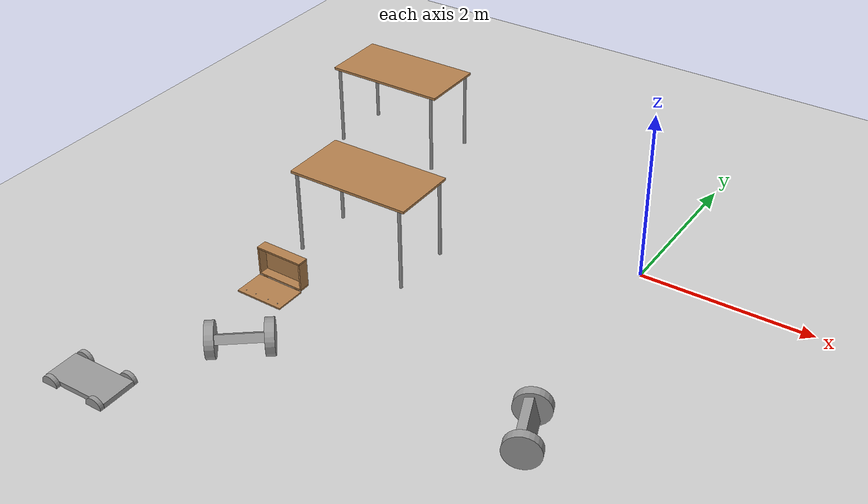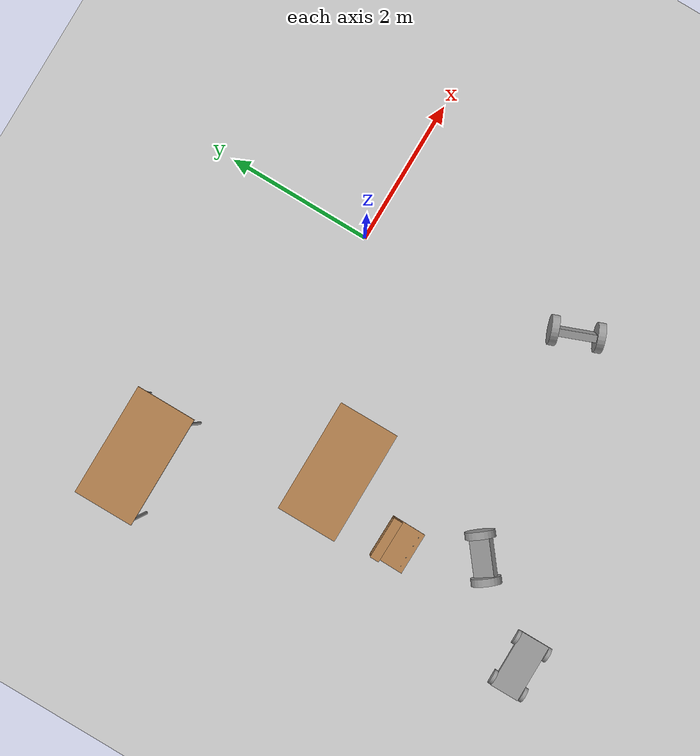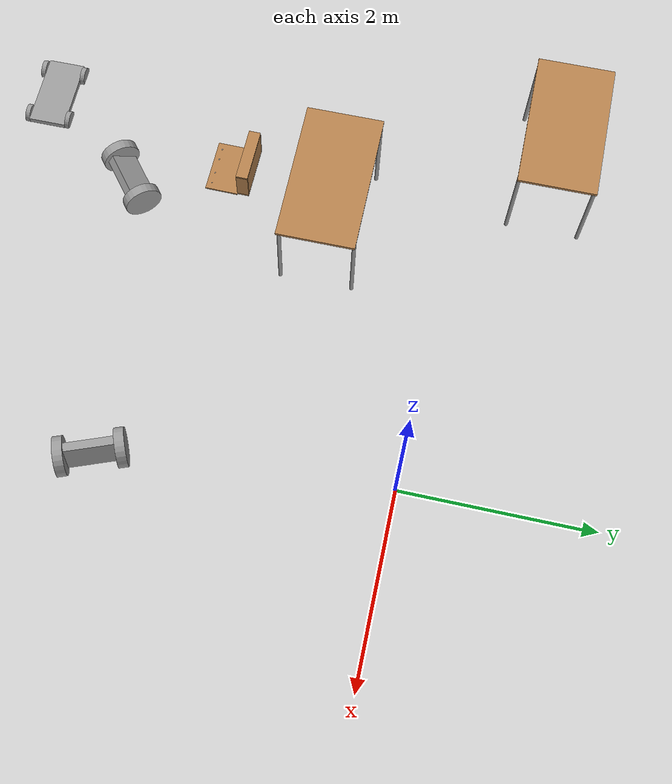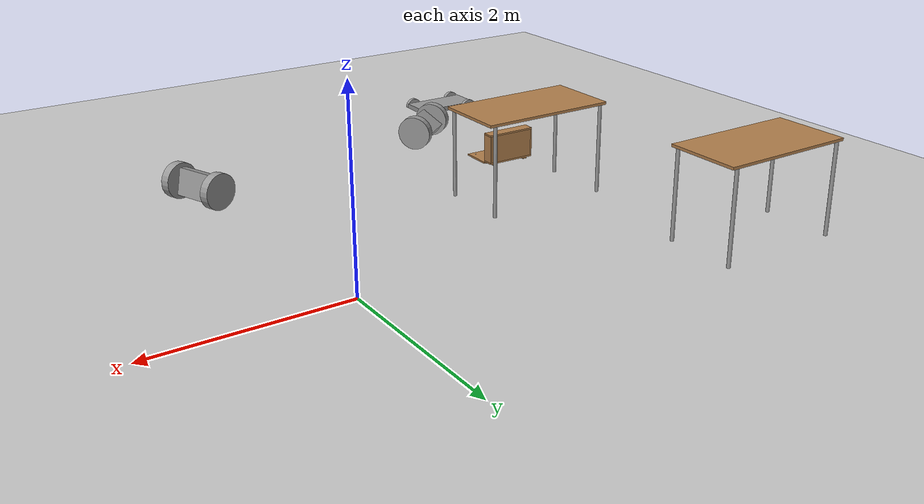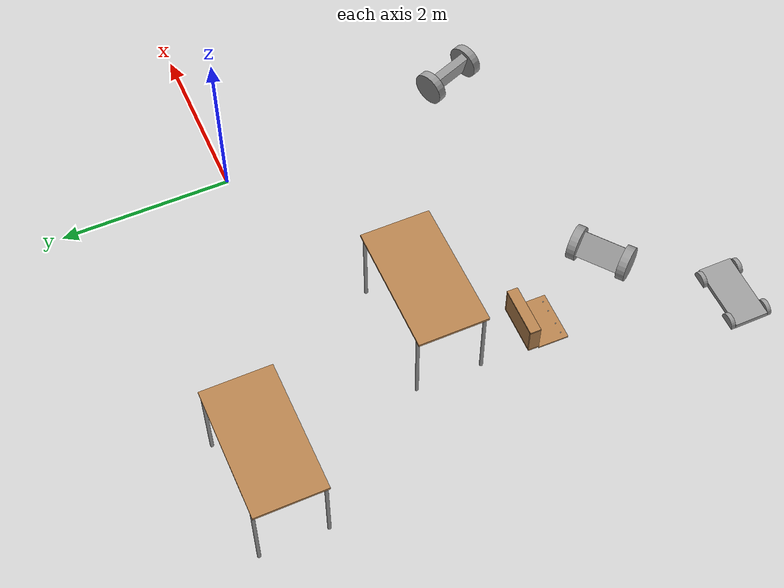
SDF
<sdf version="1.7">
 <world name="default">
  <model name="ground_plane">
   <static>1</static>
   <link name="link">
    <collision name="collision">
     <geometry><plane><normal>0 0 1</normal><size>100 100</size></plane></geometry>
     <surface>
      <contact><collide_bitmask>65535</collide_bitmask></contact>
      <friction><ode><mu>100</mu><mu2>50</mu2></ode></friction>
     </surface>
    </collision>
    <visual name="visual">
     <cast_shadows>0</cast_shadows>
     <geometry><plane><normal>0 0 1</normal><size>100 100</size></plane></geometry>
     <material>
      <script><uri>file://media/materials/scripts/gazebo.material</uri><name>Gazebo/Grey</name></script>
     </material>
    </visual>
   </link>
  </model>
  <model name="TwoWheelRobot">
   <link name="link_0">
    <inertial>
     <mass>1</mass>
     <inertia>
      <ixx>0.166667</ixx>
      <ixy>0</ixy>
      <ixz>0</ixz>
      <iyy>0.166667</iyy>
      <iyz>0</iyz>
      <izz>0.166667</izz>
     </inertia>
    </inertial>
    <visual name="visual">
     <geometry><box><size>0.3 0.5 0.1</size></box></geometry>
     <material>
      <lighting>1</lighting>
      <script><uri>file://media/materials/scripts/gazebo.material</uri><name>Gazebo/Grey</name></script>
      <shader type="pixel"><normal_map>__default__</normal_map></shader>
      <ambient>0.3 0.3 0.3 1</ambient>
      <diffuse>0.7 0.7 0.7 1</diffuse>
      <specular>0.01 0.01 0.01 1</specular>
      <emissive>0 0 0 1</emissive>
     </material>
    </visual>
    <collision name="collision">
     <geometry><box><size>0.3 0.5 0.1</size></box></geometry>
     <surface>
      <friction>
       <ode><mu>1</mu><mu2>1</mu2><fdir1>0 0 0</fdir1><slip1>0</slip1><slip2>0</slip2></ode>
       <torsional>
        <coefficient>1</coefficient>
        <patch_radius>0</patch_radius>
        <surface_radius>0</surface_radius>
        <use_patch_radius>1</use_patch_radius>
        <ode><slip>0</slip></ode>
       </torsional>
      </friction>
      <bounce><restitution_coefficient>0</restitution_coefficient><threshold>1e+06</threshold></bounce>
      <contact>
       <collide_without_contact>0</collide_without_contact>
       <collide_without_contact_bitmask>1</collide_without_contact_bitmask>
       <collide_bitmask>1</collide_bitmask>
       <ode>
        <soft_cfm>0</soft_cfm>
        <soft_erp>0.2</soft_erp>
        <kp>1e+13</kp>
        <kd>1</kd>
        <max_vel>0.01</max_vel>
        <min_depth>0</min_depth>
       </ode>
       <bullet>
        <split_impulse>1</split_impulse>
        <split_impulse_penetration_threshold>-0.01</split_impulse_penetration_threshold>
        <soft_cfm>0</soft_cfm>
        <soft_erp>0.2</soft_erp>
        <kp>1e+13</kp>
        <kd>1</kd>
       </bullet>
      </contact>
     </surface>
    </collision>
   </link>
   <link name="link_2">
    <pose>0 -0.300019 0 1.5707 -0 0</pose>
    <inertial>
     <mass>1</mass>
     <inertia><ixx>0.145833</ixx><ixy>0</ixy><ixz>0</ixz><iyy>0.145833</iyy><iyz>0</iyz><izz>0.125</izz></inertia>
    </inertial>
    <visual name="visual">
     <geometry><cylinder><radius>0.2</radius><length>0.1</length></cylinder></geometry>
     <material>
      <lighting>1</lighting>
      <script><uri>file://media/materials/scripts/gazebo.material</uri><name>Gazebo/Grey</name></script>
      <shader type="pixel"><normal_map>__default__</normal_map></shader>
      <ambient>0.3 0.3 0.3 1</ambient>
      <diffuse>0.7 0.7 0.7 1</diffuse>
      <specular>0.01 0.01 0.01 1</specular>
      <emissive>0 0 0 1</emissive>
     </material>
    </visual>
    <collision name="collision">
     <geometry><cylinder><radius>0.2</radius><length>0.1</length></cylinder></geometry>
     <surface>
      <friction>
       <ode><mu>1</mu><mu2>1</mu2><fdir1>0 0 0</fdir1><slip1>0</slip1><slip2>0</slip2></ode>
       <torsional>
        <coefficient>1</coefficient>
        <patch_radius>0</patch_radius>
        <surface_radius>0</surface_radius>
        <use_patch_radius>1</use_patch_radius>
        <ode><slip>0</slip></ode>
       </torsional>
      </friction>
      <bounce><restitution_coefficient>0</restitution_coefficient><threshold>1e+06</threshold></bounce>
      <contact>
       <collide_without_contact>0</collide_without_contact>
       <collide_without_contact_bitmask>1</collide_without_contact_bitmask>
       <collide_bitmask>1</collide_bitmask>
       <ode>
        <soft_cfm>0</soft_cfm>
        <soft_erp>0.2</soft_erp>
        <kp>1e+13</kp>
        <kd>1</kd>
        <max_vel>0.01</max_vel>
        <min_depth>0</min_depth>
       </ode>
       <bullet>
        <split_impulse>1</split_impulse>
        <split_impulse_penetration_threshold>-0.01</split_impulse_penetration_threshold>
        <soft_cfm>0</soft_cfm>
        <soft_erp>0.2</soft_erp>
        <kp>1e+13</kp>
        <kd>1</kd>
       </bullet>
      </contact>
     </surface>
    </collision>
   </link>
   <link name="link_2_clone">
    <pose>0 0.300019 0 1.5707 -0 0</pose>
    <inertial>
     <mass>1</mass>
     <inertia><ixx>0.145833</ixx><ixy>0</ixy><ixz>0</ixz><iyy>0.145833</iyy><iyz>0</iyz><izz>0.125</izz></inertia>
    </inertial>
    <visual name="visual">
     <geometry><cylinder><radius>0.2</radius><length>0.1</length></cylinder></geometry>
     <material>
      <lighting>1</lighting>
      <script><uri>file://media/materials/scripts/gazebo.material</uri><name>Gazebo/Grey</name></script>
      <shader type="pixel"><normal_map>__default__</normal_map></shader>
      <ambient>0.3 0.3 0.3 1</ambient>
      <diffuse>0.7 0.7 0.7 1</diffuse>
      <specular>0.01 0.01 0.01 1</specular>
      <emissive>0 0 0 1</emissive>
     </material>
    </visual>
    <collision name="collision">
     <geometry><cylinder><radius>0.2</radius><length>0.1</length></cylinder></geometry>
     <surface>
      <friction>
       <ode><mu>1</mu><mu2>1</mu2><fdir1>0 0 0</fdir1><slip1>0</slip1><slip2>0</slip2></ode>
       <torsional>
        <coefficient>1</coefficient>
        <patch_radius>0</patch_radius>
        <surface_radius>0</surface_radius>
        <use_patch_radius>1</use_patch_radius>
        <ode><slip>0</slip></ode>
       </torsional>
      </friction>
      <bounce><restitution_coefficient>0</restitution_coefficient><threshold>1e+06</threshold></bounce>
      <contact>
       <collide_without_contact>0</collide_without_contact>
       <collide_without_contact_bitmask>1</collide_without_contact_bitmask>
       <collide_bitmask>1</collide_bitmask>
       <ode>
        <soft_cfm>0</soft_cfm>
        <soft_erp>0.2</soft_erp>
        <kp>1e+13</kp>
        <kd>1</kd>
        <max_vel>0.01</max_vel>
        <min_depth>0</min_depth>
       </ode>
       <bullet>
        <split_impulse>1</split_impulse>
        <split_impulse_penetration_threshold>-0.01</split_impulse_penetration_threshold>
        <soft_cfm>0</soft_cfm>
        <soft_erp>0.2</soft_erp>
        <kp>1e+13</kp>
        <kd>1</kd>
       </bullet>
      </contact>
     </surface>
    </collision>
   </link>
   <joint name="link_0_JOINT_1" type="revolute">
    <parent>link_0</parent>
    <child>link_2</child>
    <axis>
     <xyz>0 0 1</xyz>
     <limit>
      <lower>-1.79769e+308</lower>
      <upper>1.79769e+308</upper>
      <effort>-1</effort>
      <velocity>-1</velocity>
     </limit>
     <dynamics>
      <spring_reference>0</spring_reference>
      <spring_stiffness>0</spring_stiffness>
      <damping>0</damping>
     </dynamics>
    </axis>
    <physics>
     <ode><limit><cfm>0</cfm><erp>0.2</erp></limit><suspension><cfm>0</cfm><erp>0.2</erp></suspension></ode>
    </physics>
   </joint>
   <joint name="link_0_JOINT_2" type="revolute">
    <parent>link_0</parent>
    <child>link_2_clone</child>
    <axis>
     <xyz>0 0 1</xyz>
     <limit>
      <lower>-1.79769e+308</lower>
      <upper>1.79769e+308</upper>
      <effort>-1</effort>
      <velocity>-1</velocity>
     </limit>
     <dynamics>
      <spring_reference>0</spring_reference>
      <spring_stiffness>0</spring_stiffness>
      <damping>0</damping>
     </dynamics>
    </axis>
    <physics>
     <ode><limit><cfm>0</cfm><erp>0.2</erp></limit><suspension><cfm>0</cfm><erp>0.2</erp></suspension></ode>
    </physics>
   </joint>
   <static>0</static>
   <pose>-2.77589 -3.42361 0.200002 6e-06 -0.625443 -0.904079</pose>
  </model>
  <model name="TwoWheelRobot_clone">
   <link name="link_0">
    <inertial>
     <mass>1</mass>
     <inertia>
      <ixx>0.166667</ixx>
      <ixy>0</ixy>
      <ixz>0</ixz>
      <iyy>0.166667</iyy>
      <iyz>0</iyz>
      <izz>0.166667</izz>
     </inertia>
    </inertial>
    <visual name="visual">
     <geometry><box><size>0.3 0.5 0.1</size></box></geometry>
     <material>
      <lighting>1</lighting>
      <script><uri>file://media/materials/scripts/gazebo.material</uri><name>Gazebo/Grey</name></script>
      <shader type="pixel"><normal_map>__default__</normal_map></shader>
      <ambient>0.3 0.3 0.3 1</ambient>
      <diffuse>0.7 0.7 0.7 1</diffuse>
      <specular>0.01 0.01 0.01 1</specular>
      <emissive>0 0 0 1</emissive>
     </material>
    </visual>
    <collision name="collision">
     <geometry><box><size>0.3 0.5 0.1</size></box></geometry>
     <surface>
      <friction>
       <ode><mu>1</mu><mu2>1</mu2><fdir1>0 0 0</fdir1><slip1>0</slip1><slip2>0</slip2></ode>
       <torsional>
        <coefficient>1</coefficient>
        <patch_radius>0</patch_radius>
        <surface_radius>0</surface_radius>
        <use_patch_radius>1</use_patch_radius>
        <ode><slip>0</slip></ode>
       </torsional>
      </friction>
      <bounce><restitution_coefficient>0</restitution_coefficient><threshold>1e+06</threshold></bounce>
      <contact>
       <collide_without_contact>0</collide_without_contact>
       <collide_without_contact_bitmask>1</collide_without_contact_bitmask>
       <collide_bitmask>1</collide_bitmask>
       <ode>
        <soft_cfm>0</soft_cfm>
        <soft_erp>0.2</soft_erp>
        <kp>1e+13</kp>
        <kd>1</kd>
        <max_vel>0.01</max_vel>
        <min_depth>0</min_depth>
       </ode>
       <bullet>
        <split_impulse>1</split_impulse>
        <split_impulse_penetration_threshold>-0.01</split_impulse_penetration_threshold>
        <soft_cfm>0</soft_cfm>
        <soft_erp>0.2</soft_erp>
        <kp>1e+13</kp>
        <kd>1</kd>
       </bullet>
      </contact>
     </surface>
    </collision>
   </link>
   <link name="link_2">
    <pose>0 -0.300019 0 1.5707 -0 0</pose>
    <inertial>
     <mass>1</mass>
     <inertia><ixx>0.145833</ixx><ixy>0</ixy><ixz>0</ixz><iyy>0.145833</iyy><iyz>0</iyz><izz>0.125</izz></inertia>
    </inertial>
    <visual name="visual">
     <geometry><cylinder><radius>0.2</radius><length>0.1</length></cylinder></geometry>
     <material>
      <lighting>1</lighting>
      <script><uri>file://media/materials/scripts/gazebo.material</uri><name>Gazebo/Grey</name></script>
      <shader type="pixel"><normal_map>__default__</normal_map></shader>
      <ambient>0.3 0.3 0.3 1</ambient>
      <diffuse>0.7 0.7 0.7 1</diffuse>
      <specular>0.01 0.01 0.01 1</specular>
      <emissive>0 0 0 1</emissive>
     </material>
    </visual>
    <collision name="collision">
     <geometry><cylinder><radius>0.2</radius><length>0.1</length></cylinder></geometry>
     <surface>
      <friction>
       <ode><mu>1</mu><mu2>1</mu2><fdir1>0 0 0</fdir1><slip1>0</slip1><slip2>0</slip2></ode>
       <torsional>
        <coefficient>1</coefficient>
        <patch_radius>0</patch_radius>
        <surface_radius>0</surface_radius>
        <use_patch_radius>1</use_patch_radius>
        <ode><slip>0</slip></ode>
       </torsional>
      </friction>
      <bounce><restitution_coefficient>0</restitution_coefficient><threshold>1e+06</threshold></bounce>
      <contact>
       <collide_without_contact>0</collide_without_contact>
       <collide_without_contact_bitmask>1</collide_without_contact_bitmask>
       <collide_bitmask>1</collide_bitmask>
       <ode>
        <soft_cfm>0</soft_cfm>
        <soft_erp>0.2</soft_erp>
        <kp>1e+13</kp>
        <kd>1</kd>
        <max_vel>0.01</max_vel>
        <min_depth>0</min_depth>
       </ode>
       <bullet>
        <split_impulse>1</split_impulse>
        <split_impulse_penetration_threshold>-0.01</split_impulse_penetration_threshold>
        <soft_cfm>0</soft_cfm>
        <soft_erp>0.2</soft_erp>
        <kp>1e+13</kp>
        <kd>1</kd>
       </bullet>
      </contact>
     </surface>
    </collision>
   </link>
   <link name="link_2_clone">
    <pose>0 0.300019 0 1.5707 -0 0</pose>
    <inertial>
     <mass>1</mass>
     <inertia><ixx>0.145833</ixx><ixy>0</ixy><ixz>0</ixz><iyy>0.145833</iyy><iyz>0</iyz><izz>0.125</izz></inertia>
    </inertial>
    <visual name="visual">
     <geometry><cylinder><radius>0.2</radius><length>0.1</length></cylinder></geometry>
     <material>
      <lighting>1</lighting>
      <script><uri>file://media/materials/scripts/gazebo.material</uri><name>Gazebo/Grey</name></script>
      <shader type="pixel"><normal_map>__default__</normal_map></shader>
      <ambient>0.3 0.3 0.3 1</ambient>
      <diffuse>0.7 0.7 0.7 1</diffuse>
      <specular>0.01 0.01 0.01 1</specular>
      <emissive>0 0 0 1</emissive>
     </material>
    </visual>
    <collision name="collision">
     <geometry><cylinder><radius>0.2</radius><length>0.1</length></cylinder></geometry>
     <surface>
      <friction>
       <ode><mu>1</mu><mu2>1</mu2><fdir1>0 0 0</fdir1><slip1>0</slip1><slip2>0</slip2></ode>
       <torsional>
        <coefficient>1</coefficient>
        <patch_radius>0</patch_radius>
        <surface_radius>0</surface_radius>
        <use_patch_radius>1</use_patch_radius>
        <ode><slip>0</slip></ode>
       </torsional>
      </friction>
      <bounce><restitution_coefficient>0</restitution_coefficient><threshold>1e+06</threshold></bounce>
      <contact>
       <collide_without_contact>0</collide_without_contact>
       <collide_without_contact_bitmask>1</collide_without_contact_bitmask>
       <collide_bitmask>1</collide_bitmask>
       <ode>
        <soft_cfm>0</soft_cfm>
        <soft_erp>0.2</soft_erp>
        <kp>1e+13</kp>
        <kd>1</kd>
        <max_vel>0.01</max_vel>
        <min_depth>0</min_depth>
       </ode>
       <bullet>
        <split_impulse>1</split_impulse>
        <split_impulse_penetration_threshold>-0.01</split_impulse_penetration_threshold>
        <soft_cfm>0</soft_cfm>
        <soft_erp>0.2</soft_erp>
        <kp>1e+13</kp>
        <kd>1</kd>
       </bullet>
      </contact>
     </surface>
    </collision>
   </link>
   <joint name="link_0_JOINT_1" type="revolute">
    <parent>link_0</parent>
    <child>link_2</child>
    <axis>
     <xyz>0 0 1</xyz>
     <limit>
      <lower>-1.79769e+308</lower>
      <upper>1.79769e+308</upper>
      <effort>-1</effort>
      <velocity>-1</velocity>
     </limit>
     <dynamics>
      <spring_reference>0</spring_reference>
      <spring_stiffness>0</spring_stiffness>
      <damping>0</damping>
     </dynamics>
    </axis>
    <physics>
     <ode><limit><cfm>0</cfm><erp>0.2</erp></limit><suspension><cfm>0</cfm><erp>0.2</erp></suspension></ode>
    </physics>
   </joint>
   <joint name="link_0_JOINT_2" type="revolute">
    <parent>link_0</parent>
    <child>link_2_clone</child>
    <axis>
     <xyz>0 0 1</xyz>
     <limit>
      <lower>-1.79769e+308</lower>
      <upper>1.79769e+308</upper>
      <effort>-1</effort>
      <velocity>-1</velocity>
     </limit>
     <dynamics>
      <spring_reference>0</spring_reference>
      <spring_stiffness>0</spring_stiffness>
      <damping>0</damping>
     </dynamics>
    </axis>
    <physics>
     <ode><limit><cfm>0</cfm><erp>0.2</erp></limit><suspension><cfm>0</cfm><erp>0.2</erp></suspension></ode>
    </physics>
   </joint>
   <static>0</static>
   <pose>0.307388 -2.97764 0.199999 -3.14157 -1.34503 -2.77387</pose>
  </model>
  <model name="wooden_case">
   <link name="base">
    <pose>0 0 0.024 0 -0 0</pose>
    <inertial>
     <pose>-0.022184 0 0.171592 0 -0 0</pose>
     <mass>3.96264</mass>
     <inertia>
      <ixx>0.213536</ixx>
      <ixy>0</ixy>
      <ixz>0.000779377</ixz>
      <iyy>0.0708943</iyy>
      <iyz>0</iyz>
      <izz>0.154604</izz>
     </inertia>
    </inertial>
    <collision name="collision_back">
     <pose>-0.053975 0 0.1778 0 -0 0</pose>
     <geometry><box><size>0.01905 0.5461 0.3175</size></box></geometry>
     <surface>
      <contact>
       <poissons_ratio>0.347</poissons_ratio>
       <elastic_modulus>8.8e+09</elastic_modulus>
       <ode><kp>100000</kp><kd>100</kd><max_vel>100</max_vel><min_depth>0.001</min_depth></ode>
      </contact>
      <friction>
       <torsional>
        <coefficient>1</coefficient>
        <use_patch_radius>0</use_patch_radius>
        <surface_radius>0.01</surface_radius>
       </torsional>
      </friction>
     </surface>
    </collision>
    <visual name="visual_back">
     <pose>-0.053975 0 0.1778 0 -0 0</pose>
     <geometry><box><size>0.01905 0.5461 0.3175</size></box></geometry>
     <material>
      <script><uri>file://media/materials/scripts/gazebo.material</uri><name>Gazebo/Wood</name></script>
     </material>
    </visual>
    <collision name="collision_bottom">
     <pose>0 0 0.009525 0 -0 0</pose>
     <geometry><box><size>0.127 0.5842 0.01905</size></box></geometry>
     <surface>
      <contact>
       <poissons_ratio>0.347</poissons_ratio>
       <elastic_modulus>8.8e+09</elastic_modulus>
       <ode><kp>100000</kp><kd>100</kd><max_vel>100</max_vel><min_depth>0.001</min_depth></ode>
      </contact>
      <friction>
       <torsional>
        <coefficient>1</coefficient>
        <use_patch_radius>0</use_patch_radius>
        <surface_radius>0.01</surface_radius>
       </torsional>
      </friction>
     </surface>
    </collision>
    <visual name="visual_bottom">
     <pose>0 0 0.009525 0 -0 0</pose>
     <geometry><box><size>0.127 0.5842 0.01905</size></box></geometry>
     <material>
      <script><uri>file://media/materials/scripts/gazebo.material</uri><name>Gazebo/Wood</name></script>
     </material>
    </visual>
    <collision name="collision_top">
     <pose>0 0 0.346075 0 -0 0</pose>
     <geometry><box><size>0.127 0.5842 0.01905</size></box></geometry>
     <surface>
      <contact>
       <poissons_ratio>0.347</poissons_ratio>
       <elastic_modulus>8.8e+09</elastic_modulus>
       <ode><kp>100000</kp><kd>100</kd><max_vel>100</max_vel><min_depth>0.001</min_depth></ode>
      </contact>
      <friction>
       <torsional>
        <coefficient>1</coefficient>
        <use_patch_radius>0</use_patch_radius>
        <surface_radius>0.01</surface_radius>
       </torsional>
      </friction>
     </surface>
    </collision>
    <visual name="visual_top">
     <pose>0 0 0.346075 0 -0 0</pose>
     <geometry><box><size>0.127 0.5842 0.01905</size></box></geometry>
     <material>
      <script><uri>file://media/materials/scripts/gazebo.material</uri><name>Gazebo/Wood</name></script>
     </material>
    </visual>
    <collision name="collision_left">
     <pose>0 -0.282575 0.1778 0 -0 0</pose>
     <geometry><box><size>0.127 0.01905 0.3175</size></box></geometry>
     <surface>
      <contact>
       <poissons_ratio>0.347</poissons_ratio>
       <elastic_modulus>8.8e+09</elastic_modulus>
       <ode><kp>100000</kp><kd>100</kd><max_vel>100</max_vel><min_depth>0.001</min_depth></ode>
      </contact>
      <friction>
       <torsional>
        <coefficient>1</coefficient>
        <use_patch_radius>0</use_patch_radius>
        <surface_radius>0.01</surface_radius>
       </torsional>
      </friction>
     </surface>
    </collision>
    <visual name="visual_left">
     <pose>0 -0.282575 0.1778 0 -0 0</pose>
     <geometry><box><size>0.127 0.01905 0.3175</size></box></geometry>
     <material>
      <script><uri>file://media/materials/scripts/gazebo.material</uri><name>Gazebo/Wood</name></script>
     </material>
    </visual>
    <collision name="collision_right">
     <pose>0 0.282575 0.1778 0 -0 0</pose>
     <geometry><box><size>0.127 0.01905 0.3175</size></box></geometry>
     <surface>
      <contact>
       <poissons_ratio>0.347</poissons_ratio>
       <elastic_modulus>8.8e+09</elastic_modulus>
       <ode><kp>100000</kp><kd>100</kd><max_vel>100</max_vel><min_depth>0.001</min_depth></ode>
      </contact>
      <friction>
       <torsional>
        <coefficient>1</coefficient>
        <use_patch_radius>0</use_patch_radius>
        <surface_radius>0.01</surface_radius>
       </torsional>
      </friction>
     </surface>
    </collision>
    <visual name="visual_right">
     <pose>0 0.282575 0.1778 0 -0 0</pose>
     <geometry><box><size>0.127 0.01905 0.3175</size></box></geometry>
     <material>
      <script><uri>file://media/materials/scripts/gazebo.material</uri><name>Gazebo/Wood</name></script>
     </material>
    </visual>
    <collision name="collision_block_left">
     <pose>0.0095 -0.2151 -0.012 0 -0 0</pose>
     <geometry><box><size>0.108 0.05 0.024</size></box></geometry>
     <surface>
      <contact>
       <poissons_ratio>0.347</poissons_ratio>
       <elastic_modulus>8.8e+09</elastic_modulus>
       <ode><kp>100000</kp><kd>100</kd><max_vel>100</max_vel><min_depth>0.001</min_depth></ode>
      </contact>
      <friction>
       <torsional>
        <coefficient>1</coefficient>
        <use_patch_radius>0</use_patch_radius>
        <surface_radius>0.01</surface_radius>
       </torsional>
      </friction>
     </surface>
    </collision>
    <visual name="visual_block_left">
     <pose>0.0095 -0.2151 -0.012 0 -0 0</pose>
     <geometry><box><size>0.108 0.05 0.024</size></box></geometry>
     <material>
      <script><uri>file://media/materials/scripts/gazebo.material</uri><name>Gazebo/Wood</name></script>
     </material>
    </visual>
    <collision name="collision_block_right">
     <pose>0.0095 0.2151 -0.012 0 -0 0</pose>
     <geometry><box><size>0.108 0.05 0.024</size></box></geometry>
     <surface>
      <contact>
       <poissons_ratio>0.347</poissons_ratio>
       <elastic_modulus>8.8e+09</elastic_modulus>
       <ode><kp>100000</kp><kd>100</kd><max_vel>100</max_vel><min_depth>0.001</min_depth></ode>
      </contact>
      <friction>
       <torsional>
        <coefficient>1</coefficient>
        <use_patch_radius>0</use_patch_radius>
        <surface_radius>0.01</surface_radius>
       </torsional>
      </friction>
     </surface>
    </collision>
    <visual name="visual_block_right">
     <pose>0.0095 0.2151 -0.012 0 -0 0</pose>
     <geometry><box><size>0.108 0.05 0.024</size></box></geometry>
     <material>
      <script><uri>file://media/materials/scripts/gazebo.material</uri><name>Gazebo/Wood</name></script>
     </material>
    </visual>
   </link>
   <link name="lid">
    <pose>0.243775 0 0.009525 0 -0 0</pose>
    <inertial>
     <mass>1.97874</mass>
     <inertia>
      <ixx>0.0563367</ixx>
      <ixy>0</ixy>
      <ixz>0</ixz>
      <iyy>0.020911</iyy>
      <iyz>0</iyz>
      <izz>0.0771281</izz>
     </inertia>
    </inertial>
    <collision name="collision">
     <geometry><box><size>0.3556 0.5842 0.01905</size></box></geometry>
     <surface>
      <contact>
       <poissons_ratio>0.347</poissons_ratio>
       <elastic_modulus>8.8e+09</elastic_modulus>
       <ode><kp>100000</kp><kd>100</kd><max_vel>100</max_vel><min_depth>0.001</min_depth></ode>
      </contact>
      <friction>
       <torsional>
        <coefficient>1</coefficient>
        <use_patch_radius>0</use_patch_radius>
        <surface_radius>0.01</surface_radius>
       </torsional>
      </friction>
     </surface>
    </collision>
    <visual name="visual">
     <geometry><box><size>0.3556 0.5842 0.01905</size></box></geometry>
     <material>
      <script><uri>file://media/materials/scripts/gazebo.material</uri><name>Gazebo/Wood</name></script>
     </material>
    </visual>
    <visual name="tee_nut_1">
     <pose>0.122 -0.216 0 0 -0 0</pose>
     <geometry><cylinder><radius>0.00635</radius><length>0.0192405</length></cylinder></geometry>
     <material>
      <script><uri>file://media/materials/scripts/gazebo.material</uri><name>Gazebo/Grey</name></script>
     </material>
    </visual>
    <visual name="tee_nut_2">
     <pose>0.122 -0.088 0 0 -0 0</pose>
     <geometry><cylinder><radius>0.00635</radius><length>0.0192405</length></cylinder></geometry>
     <material>
      <script><uri>file://media/materials/scripts/gazebo.material</uri><name>Gazebo/Grey</name></script>
     </material>
    </visual>
    <visual name="tee_nut_3">
     <pose>0.122 0.088 0 0 -0 0</pose>
     <geometry><cylinder><radius>0.00635</radius><length>0.0192405</length></cylinder></geometry>
     <material>
      <script><uri>file://media/materials/scripts/gazebo.material</uri><name>Gazebo/Grey</name></script>
     </material>
    </visual>
    <visual name="tee_nut_4">
     <pose>0.122 0.216 0 0 -0 0</pose>
     <geometry><cylinder><radius>0.00635</radius><length>0.0192405</length></cylinder></geometry>
     <material>
      <script><uri>file://media/materials/scripts/gazebo.material</uri><name>Gazebo/Grey</name></script>
     </material>
    </visual>
   </link>
   <joint name="lid_hinge" type="revolute">
    <pose>-0.1778 0 0.01905 0 -0 0</pose>
    <parent>base</parent>
    <child>lid</child>
    <axis>
     <xyz>0 1 0</xyz>
     <limit><upper>0.523599</upper><lower>-1.5708</lower></limit>
     <dynamics><spring_reference>0</spring_reference><spring_stiffness>0</spring_stiffness></dynamics>
    </axis>
   </joint>
   <pose>-3.20802 -2.22877 -0.001057 -0 -0.000435 -1.58633</pose>
  </model>
  <model name="table_0">
   <static>1</static>
   <link name="link">
    <collision name="surface">
     <pose>0 0 1 0 -0 0</pose>
     <geometry><box><size>1.5 0.8 0.03</size></box></geometry>
     <surface><friction><ode><mu>0.6</mu><mu2>0.6</mu2></ode></friction></surface>
    </collision>
    <visual name="visual1">
     <pose>0 0 1 0 -0 0</pose>
     <geometry><box><size>1.5 0.8 0.03</size></box></geometry>
     <material>
      <script><uri>file://media/materials/scripts/gazebo.material</uri><name>Gazebo/Wood</name></script>
     </material>
    </visual>
    <collision name="front_left_leg">
     <pose>0.68 0.38 0.5 0 -0 0</pose>
     <geometry><cylinder><radius>0.02</radius><length>1</length></cylinder></geometry>
    </collision>
    <visual name="front_left_leg">
     <pose>0.68 0.38 0.5 0 -0 0</pose>
     <geometry><cylinder><radius>0.02</radius><length>1</length></cylinder></geometry>
     <material>
      <script><uri>file://media/materials/scripts/gazebo.material</uri><name>Gazebo/Grey</name></script>
     </material>
    </visual>
    <collision name="front_right_leg">
     <pose>0.68 -0.38 0.5 0 -0 0</pose>
     <geometry><cylinder><radius>0.02</radius><length>1</length></cylinder></geometry>
    </collision>
    <visual name="front_right_leg">
     <pose>0.68 -0.38 0.5 0 -0 0</pose>
     <geometry><cylinder><radius>0.02</radius><length>1</length></cylinder></geometry>
     <material>
      <script><uri>file://media/materials/scripts/gazebo.material</uri><name>Gazebo/Grey</name></script>
     </material>
    </visual>
    <collision name="back_right_leg">
     <pose>-0.68 -0.38 0.5 0 -0 0</pose>
     <geometry><cylinder><radius>0.02</radius><length>1</length></cylinder></geometry>
    </collision>
    <visual name="back_right_leg">
     <pose>-0.68 -0.38 0.5 0 -0 0</pose>
     <geometry><cylinder><radius>0.02</radius><length>1</length></cylinder></geometry>
     <material>
      <script><uri>file://media/materials/scripts/gazebo.material</uri><name>Gazebo/Grey</name></script>
     </material>
    </visual>
    <collision name="back_left_leg">
     <pose>-0.68 0.38 0.5 0 -0 0</pose>
     <geometry><cylinder><radius>0.02</radius><length>1</length></cylinder></geometry>
    </collision>
    <visual name="back_left_leg">
     <pose>-0.68 0.38 0.5 0 -0 0</pose>
     <geometry><cylinder><radius>0.02</radius><length>1</length></cylinder></geometry>
     <material>
      <script><uri>file://media/materials/scripts/gazebo.material</uri><name>Gazebo/Grey</name></script>
     </material>
    </visual>
   </link>
   <pose>-3.85723 0.983985 0 0 -0 0</pose>
  </model>
  <model name="table_1">
   <static>1</static>
   <link name="link">
    <collision name="surface">
     <pose>0 0 1 0 -0 0</pose>
     <geometry><box><size>1.5 0.8 0.03</size></box></geometry>
     <surface><friction><ode><mu>0.6</mu><mu2>0.6</mu2></ode></friction></surface>
    </collision>
    <visual name="visual1">
     <pose>0 0 1 0 -0 0</pose>
     <geometry><box><size>1.5 0.8 0.03</size></box></geometry>
     <material>
      <script><uri>file://media/materials/scripts/gazebo.material</uri><name>Gazebo/Wood</name></script>
     </material>
    </visual>
    <collision name="front_left_leg">
     <pose>0.68 0.38 0.5 0 -0 0</pose>
     <geometry><cylinder><radius>0.02</radius><length>1</length></cylinder></geometry>
    </collision>
    <visual name="front_left_leg">
     <pose>0.68 0.38 0.5 0 -0 0</pose>
     <geometry><cylinder><radius>0.02</radius><length>1</length></cylinder></geometry>
     <material>
      <script><uri>file://media/materials/scripts/gazebo.material</uri><name>Gazebo/Grey</name></script>
     </material>
    </visual>
    <collision name="front_right_leg">
     <pose>0.68 -0.38 0.5 0 -0 0</pose>
     <geometry><cylinder><radius>0.02</radius><length>1</length></cylinder></geometry>
    </collision>
    <visual name="front_right_leg">
     <pose>0.68 -0.38 0.5 0 -0 0</pose>
     <geometry><cylinder><radius>0.02</radius><length>1</length></cylinder></geometry>
     <material>
      <script><uri>file://media/materials/scripts/gazebo.material</uri><name>Gazebo/Grey</name></script>
     </material>
    </visual>
    <collision name="back_right_leg">
     <pose>-0.68 -0.38 0.5 0 -0 0</pose>
     <geometry><cylinder><radius>0.02</radius><length>1</length></cylinder></geometry>
    </collision>
    <visual name="back_right_leg">
     <pose>-0.68 -0.38 0.5 0 -0 0</pose>
     <geometry><cylinder><radius>0.02</radius><length>1</length></cylinder></geometry>
     <material>
      <script><uri>file://media/materials/scripts/gazebo.material</uri><name>Gazebo/Grey</name></script>
     </material>
    </visual>
    <collision name="back_left_leg">
     <pose>-0.68 0.38 0.5 0 -0 0</pose>
     <geometry><cylinder><radius>0.02</radius><length>1</length></cylinder></geometry>
    </collision>
    <visual name="back_left_leg">
     <pose>-0.68 0.38 0.5 0 -0 0</pose>
     <geometry><cylinder><radius>0.02</radius><length>1</length></cylinder></geometry>
     <material>
      <script><uri>file://media/materials/scripts/gazebo.material</uri><name>Gazebo/Grey</name></script>
     </material>
    </visual>
   </link>
   <pose>-2.753 -1.24468 0 0 -0 0</pose>
  </model>
  <model name="FourWheelRobot">
   <link name="link_1">
    <pose>-0.3 -0.225 -0 1.5708 -0 0</pose>
    <inertial>
     <mass>1</mass>
     <inertia><ixx>0.145833</ixx><ixy>0</ixy><ixz>0</ixz><iyy>0.145833</iyy><iyz>0</iyz><izz>0.125</izz></inertia>
    </inertial>
    <visual name="visual">
     <geometry><cylinder><radius>0.1</radius><length>0.05</length></cylinder></geometry>
     <material>
      <lighting>1</lighting>
      <script><uri>file://media/materials/scripts/gazebo.material</uri><name>Gazebo/Grey</name></script>
      <shader type="pixel"><normal_map>__default__</normal_map></shader>
      <ambient>0.3 0.3 0.3 1</ambient>
      <diffuse>0.7 0.7 0.7 1</diffuse>
      <specular>0.01 0.01 0.01 1</specular>
      <emissive>0 0 0 1</emissive>
     </material>
    </visual>
    <collision name="collision">
     <geometry><cylinder><radius>0.1</radius><length>0.05</length></cylinder></geometry>
     <surface>
      <friction>
       <ode><mu>1</mu><mu2>1</mu2><fdir1>0 0 0</fdir1><slip1>0</slip1><slip2>0</slip2></ode>
       <torsional>
        <coefficient>1</coefficient>
        <patch_radius>0</patch_radius>
        <surface_radius>0</surface_radius>
        <use_patch_radius>1</use_patch_radius>
        <ode><slip>0</slip></ode>
       </torsional>
      </friction>
      <bounce><restitution_coefficient>0</restitution_coefficient><threshold>1e+06</threshold></bounce>
      <contact>
       <collide_without_contact>0</collide_without_contact>
       <collide_without_contact_bitmask>1</collide_without_contact_bitmask>
       <collide_bitmask>1</collide_bitmask>
       <ode>
        <soft_cfm>0</soft_cfm>
        <soft_erp>0.2</soft_erp>
        <kp>1e+13</kp>
        <kd>1</kd>
        <max_vel>0.01</max_vel>
        <min_depth>0</min_depth>
       </ode>
       <bullet>
        <split_impulse>1</split_impulse>
        <split_impulse_penetration_threshold>-0.01</split_impulse_penetration_threshold>
        <soft_cfm>0</soft_cfm>
        <soft_erp>0.2</soft_erp>
        <kp>1e+13</kp>
        <kd>1</kd>
       </bullet>
      </contact>
     </surface>
    </collision>
   </link>
   <link name="link_1_clone">
    <pose>-0.3 0.225 -0 1.5708 -0 0</pose>
    <inertial>
     <mass>1</mass>
     <inertia><ixx>0.145833</ixx><ixy>0</ixy><ixz>0</ixz><iyy>0.145833</iyy><iyz>0</iyz><izz>0.125</izz></inertia>
    </inertial>
    <visual name="visual">
     <geometry><cylinder><radius>0.1</radius><length>0.05</length></cylinder></geometry>
     <material>
      <lighting>1</lighting>
      <script><uri>file://media/materials/scripts/gazebo.material</uri><name>Gazebo/Grey</name></script>
      <shader type="pixel"><normal_map>__default__</normal_map></shader>
      <ambient>0.3 0.3 0.3 1</ambient>
      <diffuse>0.7 0.7 0.7 1</diffuse>
      <specular>0.01 0.01 0.01 1</specular>
      <emissive>0 0 0 1</emissive>
     </material>
    </visual>
    <collision name="collision">
     <geometry><cylinder><radius>0.1</radius><length>0.05</length></cylinder></geometry>
     <surface>
      <friction>
       <ode><mu>1</mu><mu2>1</mu2><fdir1>0 0 0</fdir1><slip1>0</slip1><slip2>0</slip2></ode>
       <torsional>
        <coefficient>1</coefficient>
        <patch_radius>0</patch_radius>
        <surface_radius>0</surface_radius>
        <use_patch_radius>1</use_patch_radius>
        <ode><slip>0</slip></ode>
       </torsional>
      </friction>
      <bounce><restitution_coefficient>0</restitution_coefficient><threshold>1e+06</threshold></bounce>
      <contact>
       <collide_without_contact>0</collide_without_contact>
       <collide_without_contact_bitmask>1</collide_without_contact_bitmask>
       <collide_bitmask>1</collide_bitmask>
       <ode>
        <soft_cfm>0</soft_cfm>
        <soft_erp>0.2</soft_erp>
        <kp>1e+13</kp>
        <kd>1</kd>
        <max_vel>0.01</max_vel>
        <min_depth>0</min_depth>
       </ode>
       <bullet>
        <split_impulse>1</split_impulse>
        <split_impulse_penetration_threshold>-0.01</split_impulse_penetration_threshold>
        <soft_cfm>0</soft_cfm>
        <soft_erp>0.2</soft_erp>
        <kp>1e+13</kp>
        <kd>1</kd>
       </bullet>
      </contact>
     </surface>
    </collision>
   </link>
   <link name="link_1_clone_0">
    <pose>0.3 -0.225 -0 1.5708 -0 0</pose>
    <inertial>
     <mass>1</mass>
     <inertia><ixx>0.145833</ixx><ixy>0</ixy><ixz>0</ixz><iyy>0.145833</iyy><iyz>0</iyz><izz>0.125</izz></inertia>
    </inertial>
    <visual name="visual">
     <geometry><cylinder><radius>0.1</radius><length>0.05</length></cylinder></geometry>
     <material>
      <lighting>1</lighting>
      <script><uri>file://media/materials/scripts/gazebo.material</uri><name>Gazebo/Grey</name></script>
      <shader type="pixel"><normal_map>__default__</normal_map></shader>
      <ambient>0.3 0.3 0.3 1</ambient>
      <diffuse>0.7 0.7 0.7 1</diffuse>
      <specular>0.01 0.01 0.01 1</specular>
      <emissive>0 0 0 1</emissive>
     </material>
    </visual>
    <collision name="collision">
     <geometry><cylinder><radius>0.1</radius><length>0.05</length></cylinder></geometry>
     <surface>
      <friction>
       <ode><mu>1</mu><mu2>1</mu2><fdir1>0 0 0</fdir1><slip1>0</slip1><slip2>0</slip2></ode>
       <torsional>
        <coefficient>1</coefficient>
        <patch_radius>0</patch_radius>
        <surface_radius>0</surface_radius>
        <use_patch_radius>1</use_patch_radius>
        <ode><slip>0</slip></ode>
       </torsional>
      </friction>
      <bounce><restitution_coefficient>0</restitution_coefficient><threshold>1e+06</threshold></bounce>
      <contact>
       <collide_without_contact>0</collide_without_contact>
       <collide_without_contact_bitmask>1</collide_without_contact_bitmask>
       <collide_bitmask>1</collide_bitmask>
       <ode>
        <soft_cfm>0</soft_cfm>
        <soft_erp>0.2</soft_erp>
        <kp>1e+13</kp>
        <kd>1</kd>
        <max_vel>0.01</max_vel>
        <min_depth>0</min_depth>
       </ode>
       <bullet>
        <split_impulse>1</split_impulse>
        <split_impulse_penetration_threshold>-0.01</split_impulse_penetration_threshold>
        <soft_cfm>0</soft_cfm>
        <soft_erp>0.2</soft_erp>
        <kp>1e+13</kp>
        <kd>1</kd>
       </bullet>
      </contact>
     </surface>
    </collision>
   </link>
   <link name="link_1_clone_1">
    <pose>0.3 0.225 -0 1.5708 -0 0</pose>
    <inertial>
     <mass>1</mass>
     <inertia><ixx>0.145833</ixx><ixy>0</ixy><ixz>0</ixz><iyy>0.145833</iyy><iyz>0</iyz><izz>0.125</izz></inertia>
    </inertial>
    <visual name="visual">
     <geometry><cylinder><radius>0.1</radius><length>0.05</length></cylinder></geometry>
     <material>
      <lighting>1</lighting>
      <script><uri>file://media/materials/scripts/gazebo.material</uri><name>Gazebo/Grey</name></script>
      <shader type="pixel"><normal_map>__default__</normal_map></shader>
      <ambient>0.3 0.3 0.3 1</ambient>
      <diffuse>0.7 0.7 0.7 1</diffuse>
      <specular>0.01 0.01 0.01 1</specular>
      <emissive>0 0 0 1</emissive>
     </material>
    </visual>
    <collision name="collision">
     <geometry><cylinder><radius>0.1</radius><length>0.05</length></cylinder></geometry>
     <surface>
      <friction>
       <ode><mu>1</mu><mu2>1</mu2><fdir1>0 0 0</fdir1><slip1>0</slip1><slip2>0</slip2></ode>
       <torsional>
        <coefficient>1</coefficient>
        <patch_radius>0</patch_radius>
        <surface_radius>0</surface_radius>
        <use_patch_radius>1</use_patch_radius>
        <ode><slip>0</slip></ode>
       </torsional>
      </friction>
      <bounce><restitution_coefficient>0</restitution_coefficient><threshold>1e+06</threshold></bounce>
      <contact>
       <collide_without_contact>0</collide_without_contact>
       <collide_without_contact_bitmask>1</collide_without_contact_bitmask>
       <collide_bitmask>1</collide_bitmask>
       <ode>
        <soft_cfm>0</soft_cfm>
        <soft_erp>0.2</soft_erp>
        <kp>1e+13</kp>
        <kd>1</kd>
        <max_vel>0.01</max_vel>
        <min_depth>0</min_depth>
       </ode>
       <bullet>
        <split_impulse>1</split_impulse>
        <split_impulse_penetration_threshold>-0.01</split_impulse_penetration_threshold>
        <soft_cfm>0</soft_cfm>
        <soft_erp>0.2</soft_erp>
        <kp>1e+13</kp>
        <kd>1</kd>
       </bullet>
      </contact>
     </surface>
    </collision>
   </link>
   <link name="link_2">
    <pose>0 0 2e-06 0 -0 0</pose>
    <inertial>
     <mass>1</mass>
     <inertia>
      <ixx>0.166667</ixx>
      <ixy>0</ixy>
      <ixz>0</ixz>
      <iyy>0.166667</iyy>
      <iyz>0</iyz>
      <izz>0.166667</izz>
     </inertia>
    </inertial>
    <visual name="visual">
     <geometry><box><size>0.8 0.4 0.1</size></box></geometry>
     <material>
      <lighting>1</lighting>
      <script><uri>file://media/materials/scripts/gazebo.material</uri><name>Gazebo/Grey</name></script>
      <shader type="pixel"><normal_map>__default__</normal_map></shader>
      <ambient>0.3 0.3 0.3 1</ambient>
      <diffuse>0.7 0.7 0.7 1</diffuse>
      <specular>0.01 0.01 0.01 1</specular>
      <emissive>0 0 0 1</emissive>
     </material>
    </visual>
    <collision name="collision">
     <geometry><box><size>0.8 0.4 0.1</size></box></geometry>
     <surface>
      <friction>
       <ode><mu>1</mu><mu2>1</mu2><fdir1>0 0 0</fdir1><slip1>0</slip1><slip2>0</slip2></ode>
       <torsional>
        <coefficient>1</coefficient>
        <patch_radius>0</patch_radius>
        <surface_radius>0</surface_radius>
        <use_patch_radius>1</use_patch_radius>
        <ode><slip>0</slip></ode>
       </torsional>
      </friction>
      <bounce><restitution_coefficient>0</restitution_coefficient><threshold>1e+06</threshold></bounce>
      <contact>
       <collide_without_contact>0</collide_without_contact>
       <collide_without_contact_bitmask>1</collide_without_contact_bitmask>
       <collide_bitmask>1</collide_bitmask>
       <ode>
        <soft_cfm>0</soft_cfm>
        <soft_erp>0.2</soft_erp>
        <kp>1e+13</kp>
        <kd>1</kd>
        <max_vel>0.01</max_vel>
        <min_depth>0</min_depth>
       </ode>
       <bullet>
        <split_impulse>1</split_impulse>
        <split_impulse_penetration_threshold>-0.01</split_impulse_penetration_threshold>
        <soft_cfm>0</soft_cfm>
        <soft_erp>0.2</soft_erp>
        <kp>1e+13</kp>
        <kd>1</kd>
       </bullet>
      </contact>
     </surface>
    </collision>
   </link>
   <joint name="link_2_JOINT_2" type="revolute">
    <parent>link_2</parent>
    <child>link_1</child>
    <axis>
     <xyz>0 0 1</xyz>
     <limit>
      <lower>-1.79769e+308</lower>
      <upper>1.79769e+308</upper>
      <effort>-1</effort>
      <velocity>-1</velocity>
     </limit>
     <dynamics>
      <spring_reference>0</spring_reference>
      <spring_stiffness>0</spring_stiffness>
      <damping>0</damping>
     </dynamics>
    </axis>
    <physics>
     <ode><limit><cfm>0</cfm><erp>0.2</erp></limit><suspension><cfm>0</cfm><erp>0.2</erp></suspension></ode>
    </physics>
   </joint>
   <joint name="link_2_JOINT_3" type="revolute">
    <parent>link_2</parent>
    <child>link_1_clone</child>
    <axis>
     <xyz>0 0 1</xyz>
     <limit>
      <lower>-1.79769e+308</lower>
      <upper>1.79769e+308</upper>
      <effort>-1</effort>
      <velocity>-1</velocity>
     </limit>
     <dynamics>
      <spring_reference>0</spring_reference>
      <spring_stiffness>0</spring_stiffness>
      <damping>0</damping>
     </dynamics>
    </axis>
    <physics>
     <ode><limit><cfm>0</cfm><erp>0.2</erp></limit><suspension><cfm>0</cfm><erp>0.2</erp></suspension></ode>
    </physics>
   </joint>
   <joint name="link_2_JOINT_4" type="revolute">
    <parent>link_2</parent>
    <child>link_1_clone_1</child>
    <axis>
     <xyz>0 0 1</xyz>
     <limit>
      <lower>-1.79769e+308</lower>
      <upper>1.79769e+308</upper>
      <effort>-1</effort>
      <velocity>-1</velocity>
     </limit>
     <dynamics>
      <spring_reference>0</spring_reference>
      <spring_stiffness>0</spring_stiffness>
      <damping>0</damping>
     </dynamics>
    </axis>
    <physics>
     <ode><limit><cfm>0</cfm><erp>0.2</erp></limit><suspension><cfm>0</cfm><erp>0.2</erp></suspension></ode>
    </physics>
   </joint>
   <joint name="link_2_JOINT_5" type="revolute">
    <parent>link_2</parent>
    <child>link_1_clone_0</child>
    <axis>
     <xyz>0 0 1</xyz>
     <limit>
      <lower>-1.79769e+308</lower>
      <upper>1.79769e+308</upper>
      <effort>-1</effort>
      <velocity>-1</velocity>
     </limit>
     <dynamics>
      <spring_reference>0</spring_reference>
      <spring_stiffness>0</spring_stiffness>
      <damping>0</damping>
     </dynamics>
    </axis>
    <physics>
     <ode><limit><cfm>0</cfm><erp>0.2</erp></limit><suspension><cfm>0</cfm><erp>0.2</erp></suspension></ode>
    </physics>
   </joint>
   <static>0</static>
   <pose>-3.74635 -4.57585 -0 0 -0 0</pose>
  </model>
 </world>
</sdf>
